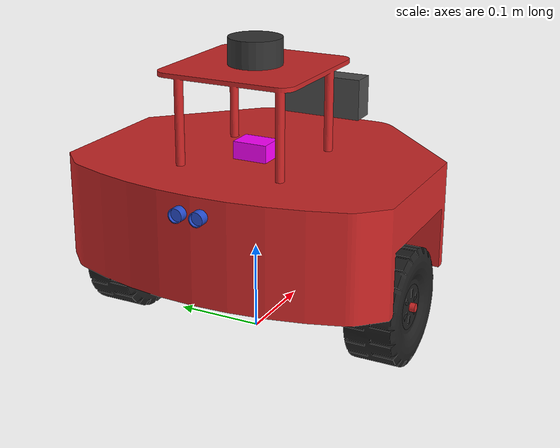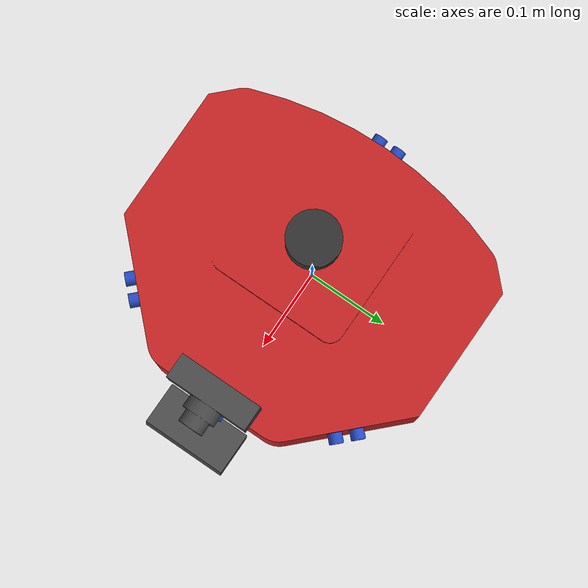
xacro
<?xml version="1.0"?>
<!-- Revolute-Revolute Manipulator -->
<robot name="octabot" xmlns:xacro="http://www.ros.org/wiki/xacro">

  <xacro:include filename="$(find octabot_description)/urdf/octabot_gazebo_description.xacro"/>

  <xacro:property name="PI" value="3.142857143"/>
  <xacro:property name="deg2rad" value="0.017460317"/>

  <xacro:property name="cam1_tilt_angle" value="0"/>   <!-- 87deg, h=0.11m, v=-0.02m -->
  <xacro:property name="cam1_move_dist_h" value="0.04"/>
  <xacro:property name="cam1_move_dist_v" value="0"/>

  <xacro:property name="cam2_tilt_angle" value="85"/>   <!-- 87deg, h=0.11m, v=-0.02m -->
  <xacro:property name="cam2_move_dist_h" value="0.04"/>
  <xacro:property name="cam2_move_dist_v" value="-0.15"/>

  <material name="silver">
        <color rgba="0.4 0.4 0.4 1"/>
    </material>

  <material name="black">
        <color rgba="0.2 0.2 0.2 1"/>
    </material>

  <material name="purple">
        <color rgba="1 0 1 1"/>
    </material>

  <material name="red">
        <color rgba="1 0 0 1"/>
    </material>

  <link name="world_frame"/>

  <joint name="base_joint" type="fixed">
    <origin xyz="0 0 0.085" rpy="0 0 0"/>
    <parent link="world_frame"/>
    <child link="chassis_link"/>
  </joint>

  <link name="chassis_link">
    <visual>
      <origin xyz="0 0 0" rpy="0 0 0"/>
      <geometry>
        <mesh filename="package://octabot_description/meshes/new_chassis.dae"/>
      </geometry>
    </visual>
    <collision>
      <origin xyz="0 0 0" rpy="0 0 0"/>
      <geometry>
        <mesh filename="package://octabot_description/meshes/chassis_collision.dae"/>
      </geometry>
    </collision>
    <inertial>
      <mass value="15.0"/>
      <origin xyz="0.0887 0 0.06" rpy="0 0 0"/>
      <inertia
        ixx="0.1818" ixy="0.0" ixz="0.0"
        iyy="0.1818" iyz="0.0"
        izz="0.3276"
      />
    </inertial>
  </link>

  <joint name="left_wheel_joint" type="continuous">
    <parent link="chassis_link"/>
    <child link="left_wheel_link"/>
    <origin xyz="0 0.163 -0.02" rpy="${-90 * deg2rad} 0 0"/>
    <axis xyz="0 0 1"/>
  </joint>

  <link name="left_wheel_link">
    <visual>
      <origin xyz="0 0 0" rpy="0 0 0"/>
      <geometry>
        <mesh filename="package://octabot_description/meshes/wheel_case.dae"/>
      </geometry>
    </visual>
    <visual>
      <origin xyz="0 0 0" rpy="0 0 0"/>
      <geometry>
        <mesh filename="package://octabot_description/meshes/wheel_130mm.dae"/>
      </geometry>
    </visual>
    <collision>
      <origin xyz="0 0 0" rpy="0 0 0"/>
      <geometry>
        <mesh filename="package://octabot_description/meshes/wheel_collision.dae"/>
      </geometry>
    </collision>
    <inertial>
      <mass value="0.2"/>
      <origin xyz="0 0 0" rpy="0 0 0"/>
      <inertia
        ixx="0.00006" ixy="0.0" ixz="0.0"
        iyy="0.00006" iyz="0.0"
        izz="0.0004225"
      />
    </inertial>
  </link>

  <joint name="right_wheel_joint" type="continuous">
    <parent link="chassis_link"/>
    <child link="right_wheel_link"/>
    <origin xyz="0 -0.163 -0.02" rpy="${-90 * deg2rad} 0 0"/>
    <axis xyz="0 0 1"/>
  </joint>

  <link name="right_wheel_link">
    <visual>
      <origin xyz="0 0 0" rpy="0 0 0"/>
      <geometry>
        <mesh filename="package://octabot_description/meshes/wheel_case.dae"/>
      </geometry>
    </visual>
    <visual>
      <origin xyz="0 0 0" rpy="0 0 0"/>
      <geometry>
        <mesh filename="package://octabot_description/meshes/wheel_130mm.dae"/>
      </geometry>
    </visual>
    <collision>
      <origin xyz="0 0 0" rpy="0 0 0"/>
      <geometry>
        <mesh filename="package://octabot_description/meshes/wheel_collision.dae"/>
      </geometry>
    </collision>
    <inertial>
      <mass value="0.2"/>
      <origin xyz="0 0 0" rpy="0 0 0"/>
      <inertia
        ixx="0.00006" ixy="0.0" ixz="0.0"
        iyy="0.00006" iyz="0.0"
        izz="0.0004225"
      />
    </inertial>
  </link>

  <joint name="front_castor_joint" type="fixed">
    <parent link="chassis_link"/>
    <child link="front_castor_link"/>
    <origin xyz="0.17 0 -0.065" rpy="0 0 0"/>
    <axis xyz="0 0 1"/>
  </joint>

  <link name="front_castor_link">
    <visual>
      <origin rpy="0 0 0" xyz="0 0 0"/>
      <geometry>
        <sphere radius="0.02"/>
      </geometry>
      <material name="black"/>
    </visual>
    <collision>
      <origin rpy="0 0 0" xyz="0 0 0"/>
      <geometry>
        <sphere radius="0.02"/>
      </geometry>
    </collision>
    <inertial>
      <mass value="0.2"/>
      <origin xyz="0 0 0" rpy="0 0 0"/>
      <inertia
        ixx="0.000032" ixy="0.0" ixz="0.0"
        iyy="0.000032" iyz="0.0"
        izz="0.000032"
      />
    </inertial>
  </link>

  <joint name="cam1_joint" type="fixed">
    <parent link="chassis_link"/>
    <child link="cam1_link"/>
    <origin xyz="${cam1_move_dist_h + 0.19} 0 ${cam1_move_dist_v + 0.150}" rpy="0 ${cam1_tilt_angle * deg2rad} 0"/>
    <axis xyz="0 1 0"/>
  </joint>

  <link name="cam1_link">
    <visual>
      <origin xyz="0 0 0" rpy="0 0 0"/>
      <geometry>
        <mesh filename="package://octabot_description/meshes/new_cam.dae"/>
      </geometry>
    </visual>
    <collision>
      <origin xyz="0 0 0" rpy="0 0 0"/>
      <geometry>
        <mesh filename="package://octabot_description/meshes/cam_collision.dae"/>
      </geometry>
    </collision>
    <inertial>
      <mass value="0.02"/>
      <origin xyz="0 0 0" rpy="0 0 0"/>
      <inertia
        ixx="0.0000000002" ixy="0.0" ixz="0.0"
        iyy="0.0000000002" iyz="0.0"
        izz="0.00000000045"
      />
    </inertial>
  </link>

  <joint name="cam2_joint" type="fixed">
    <parent link="chassis_link"/>
    <child link="cam2_link"/>
    <origin xyz="${cam2_move_dist_h + 0.19} 0 ${cam2_move_dist_v + 0.150}" rpy="0 ${cam2_tilt_angle * deg2rad} 0"/>
    <axis xyz="0 1 0"/>
  </joint>

  <link name="cam2_link">
    <visual>
      <origin xyz="0 0 0" rpy="0 0 0"/>
      <geometry>
        <mesh filename="package://octabot_description/meshes/new_cam.dae"/>
      </geometry>
    </visual>
    <collision>
      <origin xyz="0 0 0" rpy="0 0 0"/>
      <geometry>
        <mesh filename="package://octabot_description/meshes/cam_collision.dae"/>
      </geometry>
    </collision>
    <inertial>
      <mass value="0.02"/>
      <origin xyz="0 0 0" rpy="0 0 0"/>
      <inertia
        ixx="0.0000000002" ixy="0.0" ixz="0.0"
        iyy="0.0000000002" iyz="0.0"
        izz="0.00000000045"
      />
    </inertial>
  </link>

  <joint name="lidar_joint" type="fixed">
    <parent link="chassis_link"/>
    <child link="lidar_link"/>
    <origin xyz="0 0 0.24" rpy="0 0 0"/>
    <axis xyz="0 0 1"/>
  </joint>

  <link name="lidar_link">
    <visual>
      <origin rpy="0 0 0" xyz="0 0 0"/>
      <geometry>
        <cylinder radius="0.03" length="0.03"/>
      </geometry>
      <material name="black"/>
    </visual>
    <collision>
      <origin rpy="0 0 0" xyz="0 0 0"/>
      <geometry>
        <cylinder radius="0.035" length="0.035"/>
      </geometry>
    </collision>
    <inertial>
      <mass value="0.02"/>
      <origin xyz="0 0 0" rpy="0 0 0"/>
      <inertia
        ixx="0.0000004" ixy="0.0" ixz="0.0"
        iyy="0.0000004" iyz="0.0"
        izz="0.00001225"
      />
    </inertial>
  </link>

  <joint name="imu_joint" type="fixed">
    <parent link="chassis_link"/>
    <child link="imu_link"/>
    <origin xyz="0 0 0.13" rpy="0 0 0"/>
    <axis xyz="0 0 1"/>
  </joint>

  <link name="imu_link">
    <visual>
      <origin rpy="0 0 0" xyz="0 0 0"/>
      <geometry>
        <box size="0.03 0.04 0.02"/>
      </geometry>
      <material name="purple"/>
    </visual>
    <collision>
      <origin rpy="0 0 0" xyz="0 0 0"/>
      <geometry>
        <box size="0.03 0.04 0.02"/>
      </geometry>
    </collision>
    <inertial>
      <mass value="0.0002"/>
      <origin xyz="0 0 0" rpy="0 0 0"/>
      <inertia
        ixx="0.0000000000000035" ixy="0.0" ixz="0.0"
        iyy="0.0000000000000035" iyz="0.0"
        izz="0.0000000000000109"
      />
    </inertial>
  </link>

  <joint name="sonar1_joint" type="fixed">
    <parent link="chassis_link"/>
    <child link="sonar1_link"/>
    <origin xyz="0.205 0 0.10" rpy="0 0 ${0 * deg2rad}"/>
    <axis xyz="0 0 1"/>
  </joint>

  <link name="sonar1_link">
    <visual>
      <origin xyz="0 0 0" rpy="0 0 0"/>
      <geometry>
        <mesh filename="package://octabot_description/meshes/sonar.dae"/>
      </geometry>
    </visual>
    <collision>
      <origin xyz="0 0 0" rpy="0 0 0"/>
      <geometry>
        <mesh filename="package://octabot_description/meshes/sonar_collision.dae"/>
      </geometry>
    </collision>
    <inertial>
      <mass value="0.001"/>
      <origin xyz="0 0 0" rpy="0 0 0"/>
      <inertia
        ixx="1e-6" ixy="0.0" ixz="0.0"
        iyy="1e-6" iyz="0.0"
        izz="1e-6"
      />
    </inertial>
  </link>

  <joint name="sonar2_joint" type="fixed">
    <parent link="chassis_link"/>
    <child link="sonar2_link"/>
    <origin xyz="0.145 0.145 0.10" rpy="0 0 ${45 * deg2rad}"/>
    <axis xyz="0 0 1"/>
  </joint>

  <link name="sonar2_link">
    <visual>
      <origin xyz="0 0 0" rpy="0 0 0"/>
      <geometry>
        <mesh filename="package://octabot_description/meshes/sonar.dae"/>
      </geometry>
    </visual>
    <collision>
      <origin xyz="0 0 0" rpy="0 0 0"/>
      <geometry>
        <mesh filename="package://octabot_description/meshes/sonar_collision.dae"/>
      </geometry>
    </collision>
    <inertial>
      <mass value="0.001"/>
      <origin xyz="0 0 0" rpy="0 0 0"/>
      <inertia
        ixx="1e-6" ixy="0.0" ixz="0.0"
        iyy="1e-6" iyz="0.0"
        izz="1e-6"
      />
    </inertial>
  </link>

  <joint name="sonar3_joint" type="fixed">
    <parent link="chassis_link"/>
    <child link="sonar3_link"/>
    <origin xyz="-0.150 0 0.10" rpy="0 0 ${180 * deg2rad}"/>
    <axis xyz="0 0 1"/>
  </joint>

  <link name="sonar3_link">
    <visual>
      <origin xyz="0 0 0" rpy="0 0 0"/>
      <geometry>
        <mesh filename="package://octabot_description/meshes/sonar.dae"/>
      </geometry>
    </visual>
    <collision>
      <origin xyz="0 0 0" rpy="0 0 0"/>
      <geometry>
        <mesh filename="package://octabot_description/meshes/sonar_collision.dae"/>
      </geometry>
    </collision>
    <inertial>
      <mass value="0.001"/>
      <origin xyz="0 0 0" rpy="0 0 0"/>
      <inertia
        ixx="1e-6" ixy="0.0" ixz="0.0"
        iyy="1e-6" iyz="0.0"
        izz="1e-6"
      />
    </inertial>
  </link>

  <joint name="sonar4_joint" type="fixed">
    <parent link="chassis_link"/>
    <child link="sonar4_link"/>
    <origin xyz="0.145 -0.145 0.10" rpy="0 0 ${-45 * deg2rad}"/>
    <axis xyz="0 0 1"/>
  </joint>

  <link name="sonar4_link">
    <visual>
      <origin xyz="0 0 0" rpy="0 0 0"/>
      <geometry>
        <mesh filename="package://octabot_description/meshes/sonar.dae"/>
      </geometry>
    </visual>
    <collision>
      <origin xyz="0 0 0" rpy="0 0 0"/>
      <geometry>
        <mesh filename="package://octabot_description/meshes/sonar_collision.dae"/>
      </geometry>
    </collision>
    <inertial>
      <mass value="0.001"/>
      <origin xyz="0 0 0" rpy="0 0 0"/>
      <inertia
        ixx="1e-6" ixy="0.0" ixz="0.0"
        iyy="1e-6" iyz="0.0"
        izz="1e-6"
      />
    </inertial>
  </link>

</robot>
